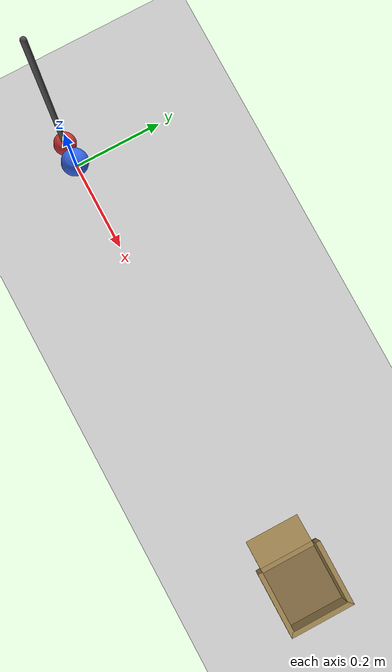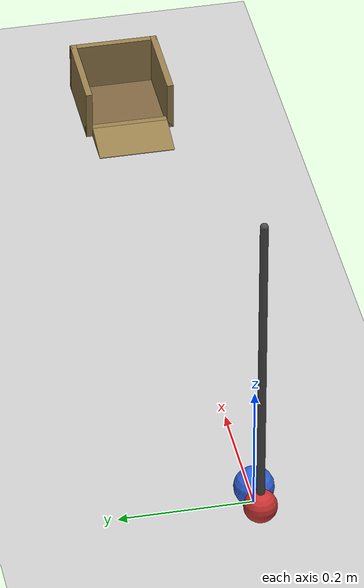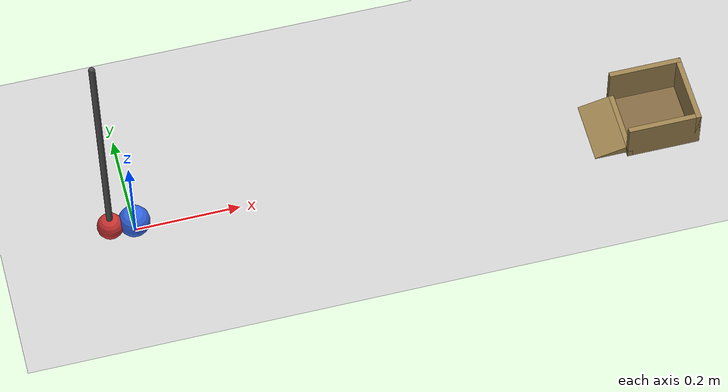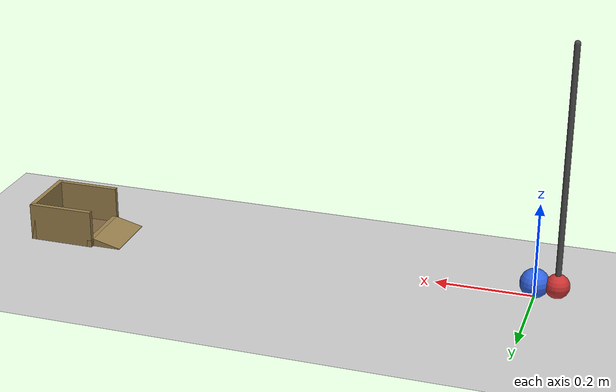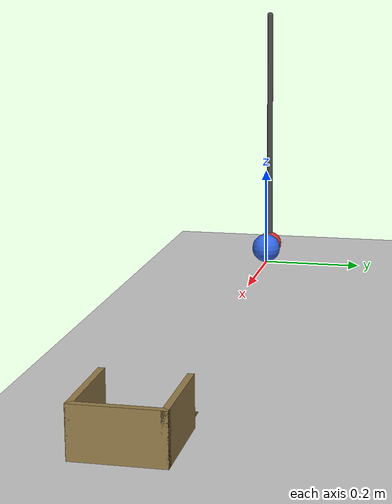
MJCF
<mujoco model="pendulum_ball_cup">
  <option timestep="0.002"/>

  <worldbody>
    <light name="sun" pos="0.5 -1 2" dir="0 0.5 -1" directional="true"/>
    <geom name="floor" type="plane" pos="0 0 0" size="3 3 0.1" rgba="0.8 0.8 0.8 1"/>

    <!-- Pendulum: pivot 0.5 m above the bob centre; bob centre at ball-centre height when hanging. -->
    <body name="pendulum" pos="-0.045 0 0.53">
      <joint name="pendulum_hinge" type="hinge" axis="0 1 0" pos="0 0 0"/>
      <geom name="pendulum_rod" type="capsule" fromto="0 0 0 0 0 -0.475" size="0.006" mass="0.02" rgba="0.3 0.3 0.3 1"/>
      <geom name="pendulum_bob" type="sphere" pos="0 0 -0.5" size="0.025" mass="0.5" rgba="0.8 0.2 0.2 1"/>
    </body>

    <!-- Ball resting on the floor at x = 0. -->
    <body name="ball" pos="0 0 0.03">
      <freejoint name="ball_free"/>
      <geom name="ball" type="sphere" size="0.03" mass="0.05" friction="1 0.005 0.0001" rgba="0.2 0.4 0.9 1"/>
    </body>

    <!-- Cup centred 1 m from the ball's start: entry ramp, low lip, sticky floor plate, tall back and side walls. -->
    <body name="cup" pos="1 0 0">
      <geom name="cup_ramp" type="box" pos="-0.0976 0 -0.0022" euler="0 -14.036 0" size="0.031 0.06 0.01" rgba="0.6 0.5 0.3 1"/>
      <geom name="cup_lip" type="box" pos="-0.065 0 0.0075" size="0.005 0.07 0.0075" rgba="0.6 0.5 0.3 1"/>
      <geom name="cup_base" type="box" pos="0 0 0.001" size="0.06 0.06 0.001" condim="6" friction="1 0.05 0.02" rgba="0.5 0.4 0.25 1"/>
      <geom name="cup_back" type="box" pos="0.065 0 0.04" size="0.005 0.07 0.04" rgba="0.6 0.5 0.3 1"/>
      <geom name="cup_side_left" type="box" pos="0 0.065 0.04" size="0.07 0.005 0.04" rgba="0.6 0.5 0.3 1"/>
      <geom name="cup_side_right" type="box" pos="0 -0.065 0.04" size="0.07 0.005 0.04" rgba="0.6 0.5 0.3 1"/>
    </body>
  </worldbody>

  <keyframe>
    <!-- Pendulum raised 36 degrees (0.628 rad) back from vertical; ball at rest on the floor. -->
    <key name="start" qpos="0.628 0 0 0.03 1 0 0 0"/>
  </keyframe>
</mujoco>
